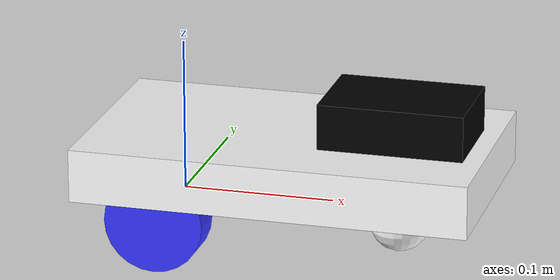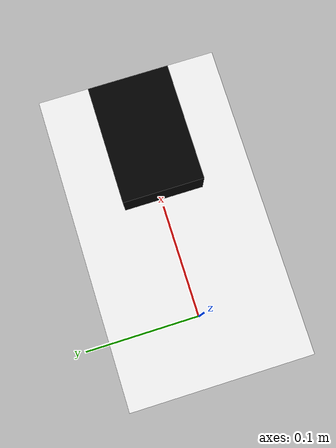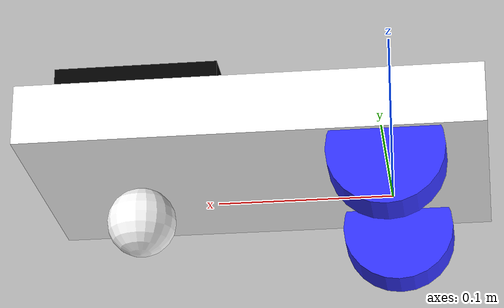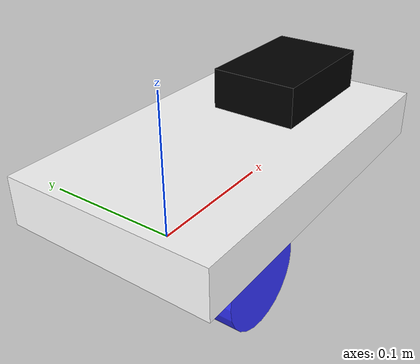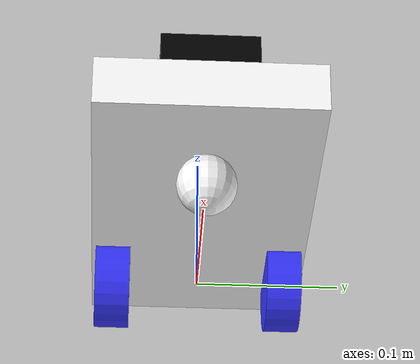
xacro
<?xml version="1.0"?>
<robot xmlns:xacro="http://www.ros.org/wiki/xacro" >

    <xacro:include filename="inertial_macros.xacro"/>
    <xacro:include filename="robot_properties.xacro"/>

    <material name="white">
        <color rgba="1 1 1 1" />
    </material>

    <material name="orange">
        <color rgba="1 0.3 0.1 1"/>
    </material>

    <material name="blue">
        <color rgba="0.2 0.2 1 1"/>
    </material>

    <material name="black">
        <color rgba="0 0 0 1"/>
    </material>

    <material name="red">
        <color rgba="1 0 0 1"/>
    </material>

    <!-- BASE LINK -->

    <link name="base_link">

    </link>

    <!-- BASE_FOOTPRINT LINK -->

    <joint name="base_footprint_joint" type="fixed">
        <parent link="base_link"/>
        <child link="base_footprint"/>
        <origin xyz="0 0 0" rpy="0 0 0"/>
    </joint>

    <link name="base_footprint">
    </link>

    <!-- CHASSIS LINK -->

    <joint name="chassis_joint" type="fixed">
        <parent link="base_link"/>
        <child link="chassis"/>
        <origin xyz="${-wheel_offset_x} 0 ${wheel_offset_z}"/>
    </joint>

    <link name="chassis">
        <visual>
            <origin xyz="${chassis_length/2} 0 ${chassis_height/2}"/>         <!-- because object will always spwan with origin at the center-->
            <geometry>
                <box size="${chassis_length} ${chassis_width} ${chassis_height}"/>
            </geometry>
            <material name="white"/>
        </visual>
        <collision>
            <origin xyz="${chassis_length/2} 0 ${chassis_height/2}"/>
            <geometry>
                <box size="${chassis_length} ${chassis_width} ${chassis_height}"/>
            </geometry>
        </collision>
        <xacro:inertial_box mass="0.5" x="${chassis_length}" y="${chassis_width}" z="${chassis_height}">
            <origin xyz="${chassis_length/2} 0 ${chassis_height/2}" rpy="0 0 0"/>
        </xacro:inertial_box>
    </link>

    <gazebo reference="chassis">
        <material>Gazebo/Orange</material>
    </gazebo>

    <!-- LEFT WHEEL LINK -->

    <joint name="left_wheel_joint" type="continuous">
        <parent link="base_link"/>
        <child link="left_wheel"/>
        <origin xyz="0 ${wheel_offset_y} 0" rpy="-${pi/2} 0 0" />
        <axis xyz="0 0 1"/>
    </joint>

    <link name="left_wheel">
        <visual>
            <geometry>
                <cylinder radius="${wheel_radius}" length="${wheel_thickness}"/>
            </geometry>
            <material name="blue"/>
        </visual>
        <collision>
            <geometry>
                <sphere radius="${wheel_radius}"/>
            </geometry>
        </collision>
        <xacro:inertial_cylinder mass="${wheel_mass}" length="${wheel_thickness}" radius="${wheel_radius}">
            <origin xyz="0 0 0" rpy="0 0 0"/>
        </xacro:inertial_cylinder>
    </link>

    <gazebo reference="left_wheel">
        <material>Gazebo/Blue</material>
    </gazebo>

    <!-- RIGHT WHEEL LINK -->

    <joint name="right_wheel_joint" type="continuous">
        <parent link="base_link"/>
        <child link="right_wheel"/>
        <origin xyz="0 ${-wheel_offset_y} 0" rpy="${pi/2} 0 0" />
        <axis xyz="0 0 -1"/>
    </joint>

    <link name="right_wheel">
        <visual>
            <geometry>
                <cylinder radius="${wheel_radius}" length="${wheel_thickness}"/>
            </geometry>
            <material name="blue"/>
        </visual>
        <collision>
            <geometry>
                <sphere radius="${wheel_radius}"/>
            </geometry>
        </collision>
        <xacro:inertial_cylinder mass="${wheel_mass}" length="${wheel_thickness}" radius="${wheel_radius}">
            <origin xyz="0 0 0" rpy="0 0 0"/>
        </xacro:inertial_cylinder>
    </link>

    <gazebo reference="right_wheel">
        <material>Gazebo/Blue</material>
    </gazebo>

    <!-- CASTER WHEEL LINK -->

    <joint name="caster_wheel_joint" type="fixed">
        <parent link="chassis"/>
        <child link="caster_wheel"/>
        <origin xyz="${caster_wheel_offset_x} 0 ${-caster_wheel_offset_z}"/>
    </joint>

    <link name="caster_wheel">
        <visual>
            <geometry>
                <sphere radius="${caster_wheel_radius}"/>
            </geometry>
            <material name="white"/>
        </visual>
        <collision>
            <geometry>
                <sphere radius="${caster_wheel_radius}"/>
            </geometry>
        </collision>
        <xacro:inertial_sphere mass="${caster_wheel_mass}" radius="${caster_wheel_radius}">
            <origin xyz="0 0 0" rpy="0 0 0"/>
        </xacro:inertial_sphere>
    </link>

    <gazebo reference="caster_wheel">
        <material>Gazebo/White</material>
        <mu1 value="0.001"/>
        <mu2 value="0.001"/>
    </gazebo>

    <joint name="pi_joint" type="fixed">
        <parent link="chassis"/>
        <child link="pi_link"/>
        <origin xyz="${pi_offset_x} 0 ${pi_offset_z}"/>
    </joint>

    <link name="pi_link">
        <visual>
            <geometry>
                <box size="${pi_length} ${pi_width} ${pi_height}"/>
            </geometry>
            <material name="black"/>
        </visual>
        <collision>
            <origin xyz="${pi_length/2} 0 ${pi_height/2}"/>
            <geometry>
                <box size="${pi_length} ${pi_width} ${pi_height}"/>
            </geometry>
        </collision>
        <xacro:inertial_box mass="0.5" x="${pi_length}" y="${pi_width}" z="${pi_height}">
            <origin xyz="${pi_offset_x} 0 ${pi_offset_z}" rpy="0 0 0"/>
        </xacro:inertial_box>
    </link>

</robot>

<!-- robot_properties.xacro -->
<robot xmlns:xacro="http://www.ros.org/wiki/xacro" >

<!-- Chassis properties -->

    <xacro:property name="chassis_length" value="0.260"/>
    <xacro:property name="chassis_width" value="0.150"/>
    <xacro:property name="chassis_height" value="0.035"/>
    <xacro:property name="chassis_mass" value="1.0"/>

<!-- Wheel properties -->
    <xacro:property name="wheel_radius" value="0.0325"/>
    <xacro:property name="wheel_thickness" value="0.024"/>
    <xacro:property name="wheel_mass" value="0.05"/>
    <xacro:property name="wheel_offset_x" value="0.055"/>
    <xacro:property name="wheel_offset_y" value="0.060"/>
    <xacro:property name="wheel_offset_z" value="0.011"/>

<!-- Castor Wheels-->
    <xacro:property name="caster_wheel_radius" value="0.02"/>
    <xacro:property name="caster_wheel_mass" value="0.01"/>
    <xacro:property name="caster_wheel_offset_x" value="0.2"/>
    <xacro:property name="caster_wheel_offset_z" value="0.02"/>

<!-- Raspberry Pi-->
    <xacro:property name="pi_length" value="0.095"/>
    <xacro:property name="pi_width" value="0.065"/>
    <xacro:property name="pi_height" value="0.03"/>
    <xacro:property name="pi_mass" value="0.2"/>

    <xacro:property name="pi_offset_x" value="0.2"/>
    <xacro:property name="pi_offset_z" value="0.05"/>

</robot>
